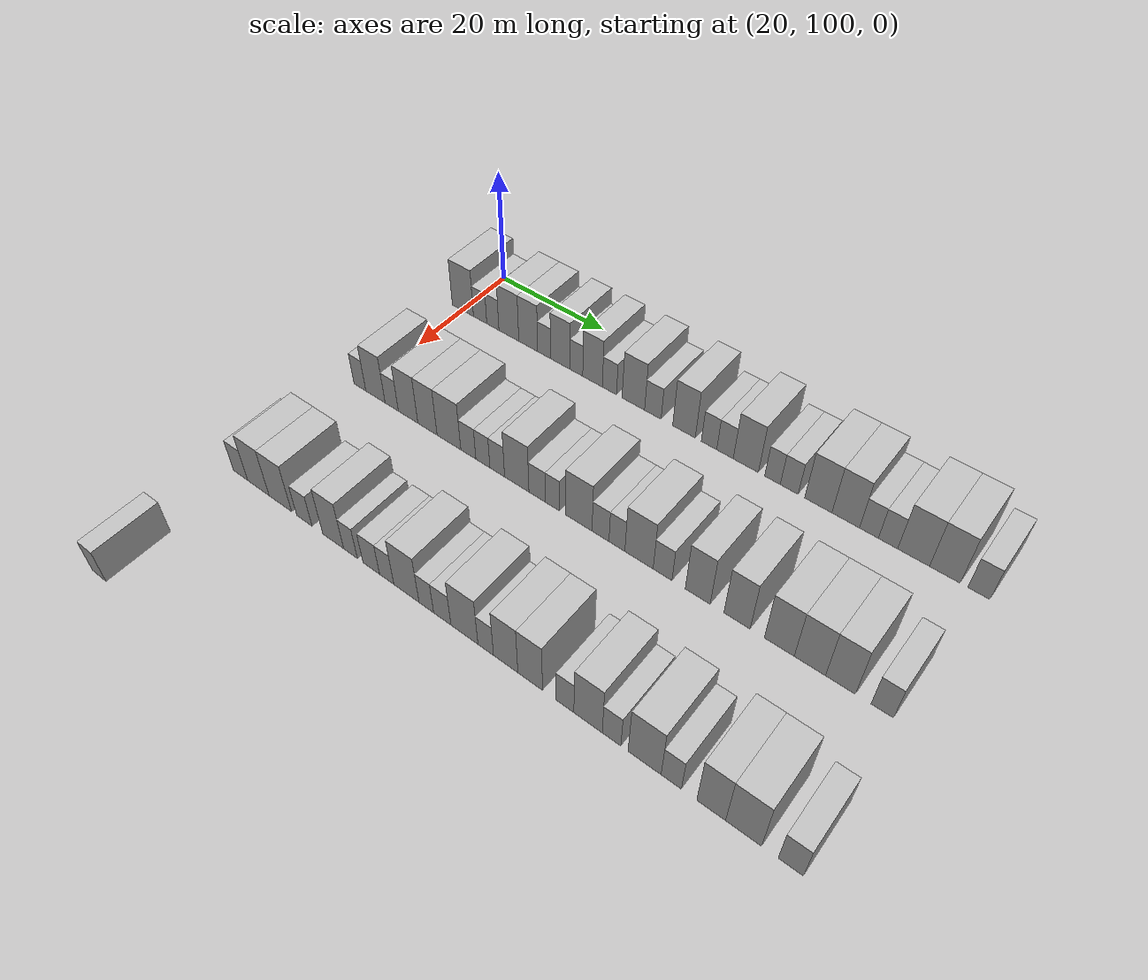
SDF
<sdf version="1.6">
 <world name="default">
  <model name="building_124">
   <static>1</static>
   <pose>25.0000 100.0367 0 0.000000 0.000000 0.000000</pose>
   <link name="link">
    <pose>0 0 4.50 0 0 0</pose>
    <collision name="collision"><geometry><box><size>10.0000 4.4048 9.0000</size></box></geometry></collision>
    <visual name="visual">
     <cast_shadows>0</cast_shadows>
     <geometry><box><size>10.0000 4.4048 9.0000</size></box></geometry>
     <material>
      <script>
       <uri>model://HANNAS_wall/materials/scripts</uri>
       <uri>model://HANNAS_wall/materials/textures</uri>
       <name>vrc/HANNAS_wall</name>
      </script>
     </material>
    </visual>
   </link>
  </model>
  <model name="building_125">
   <static>1</static>
   <pose>25.0000 103.6063 0 0.000000 0.000000 0.000000</pose>
   <link name="link">
    <pose>0 0 3.00 0 0 0</pose>
    <collision name="collision"><geometry><box><size>10.0000 2.7344 6.0000</size></box></geometry></collision>
    <visual name="visual">
     <cast_shadows>0</cast_shadows>
     <geometry><box><size>10.0000 2.7344 6.0000</size></box></geometry>
     <material>
      <script>
       <uri>model://HANNAS_wall/materials/scripts</uri>
       <uri>model://HANNAS_wall/materials/textures</uri>
       <name>vrc/HANNAS_wall</name>
      </script>
     </material>
    </visual>
   </link>
  </model>
  <model name="building_126">
   <static>1</static>
   <pose>25.0000 106.2059 0 0.000000 0.000000 0.000000</pose>
   <link name="link">
    <pose>0 0 3.00 0 0 0</pose>
    <collision name="collision"><geometry><box><size>10.0000 2.4646 6.0000</size></box></geometry></collision>
    <visual name="visual">
     <cast_shadows>0</cast_shadows>
     <geometry><box><size>10.0000 2.4646 6.0000</size></box></geometry>
     <material>
      <script>
       <uri>model://HANNAS_wall/materials/scripts</uri>
       <uri>model://HANNAS_wall/materials/textures</uri>
       <name>vrc/HANNAS_wall</name>
      </script>
     </material>
    </visual>
   </link>
  </model>
  <model name="building_127">
   <static>1</static>
   <pose>25.0000 109.4207 0 0.000000 0.000000 0.000000</pose>
   <link name="link">
    <pose>0 0 4.50 0 0 0</pose>
    <collision name="collision"><geometry><box><size>10.0000 3.9651 9.0000</size></box></geometry></collision>
    <visual name="visual">
     <cast_shadows>0</cast_shadows>
     <geometry><box><size>10.0000 3.9651 9.0000</size></box></geometry>
     <material>
      <script>
       <uri>model://HANNAS_wall/materials/scripts</uri>
       <uri>model://HANNAS_wall/materials/textures</uri>
       <name>vrc/HANNAS_wall</name>
      </script>
     </material>
    </visual>
   </link>
  </model>
  <model name="building_128">
   <static>1</static>
   <pose>25.0000 113.2568 0 0.000000 0.000000 0.000000</pose>
   <link name="link">
    <pose>0 0 4.50 0 0 0</pose>
    <collision name="collision"><geometry><box><size>10.0000 3.7070 9.0000</size></box></geometry></collision>
    <visual name="visual">
     <cast_shadows>0</cast_shadows>
     <geometry><box><size>10.0000 3.7070 9.0000</size></box></geometry>
     <material>
      <script>
       <uri>model://HANNAS_wall/materials/scripts</uri>
       <uri>model://HANNAS_wall/materials/textures</uri>
       <name>vrc/HANNAS_wall</name>
      </script>
     </material>
    </visual>
   </link>
  </model>
  <model name="building_129">
   <static>1</static>
   <pose>25.0000 116.3476 0 0.000000 0.000000 0.000000</pose>
   <link name="link">
    <pose>0 0 3.00 0 0 0</pose>
    <collision name="collision"><geometry><box><size>10.0000 2.4745 6.0000</size></box></geometry></collision>
    <visual name="visual">
     <cast_shadows>0</cast_shadows>
     <geometry><box><size>10.0000 2.4745 6.0000</size></box></geometry>
     <material>
      <script>
       <uri>model://HANNAS_wall/materials/scripts</uri>
       <uri>model://HANNAS_wall/materials/textures</uri>
       <name>vrc/HANNAS_wall</name>
      </script>
     </material>
    </visual>
   </link>
  </model>
  <model name="building_130">
   <static>1</static>
   <pose>25.0000 119.4244 0 0.000000 0.000000 0.000000</pose>
   <link name="link">
    <pose>0 0 4.50 0 0 0</pose>
    <collision name="collision"><geometry><box><size>10.0000 3.6791 9.0000</size></box></geometry></collision>
    <visual name="visual">
     <cast_shadows>0</cast_shadows>
     <geometry><box><size>10.0000 3.6791 9.0000</size></box></geometry>
     <material>
      <script>
       <uri>model://HANNAS_wall/materials/scripts</uri>
       <uri>model://HANNAS_wall/materials/textures</uri>
       <name>vrc/HANNAS_wall</name>
      </script>
     </material>
    </visual>
   </link>
  </model>
  <model name="building_131">
   <static>1</static>
   <pose>25.0000 122.4677 0 0.000000 0.000000 0.000000</pose>
   <link name="link">
    <pose>0 0 3.00 0 0 0</pose>
    <collision name="collision"><geometry><box><size>10.0000 2.4076 6.0000</size></box></geometry></collision>
    <visual name="visual">
     <cast_shadows>0</cast_shadows>
     <geometry><box><size>10.0000 2.4076 6.0000</size></box></geometry>
     <material>
      <script>
       <uri>model://HANNAS_wall/materials/scripts</uri>
       <uri>model://HANNAS_wall/materials/textures</uri>
       <name>vrc/HANNAS_wall</name>
      </script>
     </material>
    </visual>
   </link>
  </model>
  <model name="building_132">
   <static>1</static>
   <pose>25.0000 125.4758 0 0.000000 0.000000 0.000000</pose>
   <link name="link">
    <pose>0 0 4.50 0 0 0</pose>
    <collision name="collision"><geometry><box><size>10.0000 3.6086 9.0000</size></box></geometry></collision>
    <visual name="visual">
     <cast_shadows>0</cast_shadows>
     <geometry><box><size>10.0000 3.6086 9.0000</size></box></geometry>
     <material>
      <script>
       <uri>model://HANNAS_wall/materials/scripts</uri>
       <uri>model://HANNAS_wall/materials/textures</uri>
       <name>vrc/HANNAS_wall</name>
      </script>
     </material>
    </visual>
   </link>
  </model>
  <model name="building_133">
   <static>1</static>
   <pose>25.0000 128.5664 0 0.000000 0.000000 0.000000</pose>
   <link name="link">
    <pose>0 0 3.00 0 0 0</pose>
    <collision name="collision"><geometry><box><size>10.0000 2.5726 6.0000</size></box></geometry></collision>
    <visual name="visual">
     <cast_shadows>0</cast_shadows>
     <geometry><box><size>10.0000 2.5726 6.0000</size></box></geometry>
     <material>
      <script>
       <uri>model://HANNAS_wall/materials/scripts</uri>
       <uri>model://HANNAS_wall/materials/textures</uri>
       <name>vrc/HANNAS_wall</name>
      </script>
     </material>
    </visual>
   </link>
  </model>
  <model name="building_134">
   <static>1</static>
   <pose>25.0000 132.8520 0 0.000000 0.000000 0.000000</pose>
   <link name="link">
    <pose>0 0 4.50 0 0 0</pose>
    <collision name="collision"><geometry><box><size>10.0000 3.9986 9.0000</size></box></geometry></collision>
    <visual name="visual">
     <cast_shadows>0</cast_shadows>
     <geometry><box><size>10.0000 3.9986 9.0000</size></box></geometry>
     <material>
      <script>
       <uri>model://HANNAS_wall/materials/scripts</uri>
       <uri>model://HANNAS_wall/materials/textures</uri>
       <name>vrc/HANNAS_wall</name>
      </script>
     </material>
    </visual>
   </link>
  </model>
  <model name="building_135">
   <static>1</static>
   <pose>25.0000 136.2824 0 0.000000 0.000000 0.000000</pose>
   <link name="link">
    <pose>0 0 3.00 0 0 0</pose>
    <collision name="collision"><geometry><box><size>10.0000 2.8621 6.0000</size></box></geometry></collision>
    <visual name="visual">
     <cast_shadows>0</cast_shadows>
     <geometry><box><size>10.0000 2.8621 6.0000</size></box></geometry>
     <material>
      <script>
       <uri>model://HANNAS_wall/materials/scripts</uri>
       <uri>model://HANNAS_wall/materials/textures</uri>
       <name>vrc/HANNAS_wall</name>
      </script>
     </material>
    </visual>
   </link>
  </model>
  <model name="building_136">
   <static>1</static>
   <pose>25.0000 141.6259 0 0.000000 0.000000 0.000000</pose>
   <link name="link">
    <pose>0 0 4.50 0 0 0</pose>
    <collision name="collision"><geometry><box><size>10.0000 3.8249 9.0000</size></box></geometry></collision>
    <visual name="visual">
     <cast_shadows>0</cast_shadows>
     <geometry><box><size>10.0000 3.8249 9.0000</size></box></geometry>
     <material>
      <script>
       <uri>model://HANNAS_wall/materials/scripts</uri>
       <uri>model://HANNAS_wall/materials/textures</uri>
       <name>vrc/HANNAS_wall</name>
      </script>
     </material>
    </visual>
   </link>
  </model>
  <model name="building_137">
   <static>1</static>
   <pose>25.0000 145.8185 0 0.000000 0.000000 0.000000</pose>
   <link name="link">
    <pose>0 0 3.00 0 0 0</pose>
    <collision name="collision"><geometry><box><size>10.0000 2.5603 6.0000</size></box></geometry></collision>
    <visual name="visual">
     <cast_shadows>0</cast_shadows>
     <geometry><box><size>10.0000 2.5603 6.0000</size></box></geometry>
     <material>
      <script>
       <uri>model://HANNAS_wall/materials/scripts</uri>
       <uri>model://HANNAS_wall/materials/textures</uri>
       <name>vrc/HANNAS_wall</name>
      </script>
     </material>
    </visual>
   </link>
  </model>
  <model name="building_138">
   <static>1</static>
   <pose>25.0000 148.4455 0 0.000000 0.000000 0.000000</pose>
   <link name="link">
    <pose>0 0 3.00 0 0 0</pose>
    <collision name="collision"><geometry><box><size>10.0000 2.6937 6.0000</size></box></geometry></collision>
    <visual name="visual">
     <cast_shadows>0</cast_shadows>
     <geometry><box><size>10.0000 2.6937 6.0000</size></box></geometry>
     <material>
      <script>
       <uri>model://HANNAS_wall/materials/scripts</uri>
       <uri>model://HANNAS_wall/materials/textures</uri>
       <name>vrc/HANNAS_wall</name>
      </script>
     </material>
    </visual>
   </link>
  </model>
  <model name="building_139">
   <static>1</static>
   <pose>25.0000 151.8034 0 0.000000 0.000000 0.000000</pose>
   <link name="link">
    <pose>0 0 4.50 0 0 0</pose>
    <collision name="collision"><geometry><box><size>10.0000 4.0221 9.0000</size></box></geometry></collision>
    <visual name="visual">
     <cast_shadows>0</cast_shadows>
     <geometry><box><size>10.0000 4.0221 9.0000</size></box></geometry>
     <material>
      <script>
       <uri>model://HANNAS_wall/materials/scripts</uri>
       <uri>model://HANNAS_wall/materials/textures</uri>
       <name>vrc/HANNAS_wall</name>
      </script>
     </material>
    </visual>
   </link>
  </model>
  <model name="building_140">
   <static>1</static>
   <pose>25.0000 156.0294 0 0.000000 0.000000 0.000000</pose>
   <link name="link">
    <pose>0 0 3.00 0 0 0</pose>
    <collision name="collision"><geometry><box><size>10.0000 2.4299 6.0000</size></box></geometry></collision>
    <visual name="visual">
     <cast_shadows>0</cast_shadows>
     <geometry><box><size>10.0000 2.4299 6.0000</size></box></geometry>
     <material>
      <script>
       <uri>model://HANNAS_wall/materials/scripts</uri>
       <uri>model://HANNAS_wall/materials/textures</uri>
       <name>vrc/HANNAS_wall</name>
      </script>
     </material>
    </visual>
   </link>
  </model>
  <model name="building_141">
   <static>1</static>
   <pose>25.0000 158.6218 0 0.000000 0.000000 0.000000</pose>
   <link name="link">
    <pose>0 0 3.00 0 0 0</pose>
    <collision name="collision"><geometry><box><size>10.0000 2.7549 6.0000</size></box></geometry></collision>
    <visual name="visual">
     <cast_shadows>0</cast_shadows>
     <geometry><box><size>10.0000 2.7549 6.0000</size></box></geometry>
     <material>
      <script>
       <uri>model://HANNAS_wall/materials/scripts</uri>
       <uri>model://HANNAS_wall/materials/textures</uri>
       <name>vrc/HANNAS_wall</name>
      </script>
     </material>
    </visual>
   </link>
  </model>
  <model name="building_142">
   <static>1</static>
   <pose>25.0000 163.0457 0 0.000000 0.000000 0.000000</pose>
   <link name="link">
    <pose>0 0 4.50 0 0 0</pose>
    <collision name="collision"><geometry><box><size>10.0000 4.0930 9.0000</size></box></geometry></collision>
    <visual name="visual">
     <cast_shadows>0</cast_shadows>
     <geometry><box><size>10.0000 4.0930 9.0000</size></box></geometry>
     <material>
      <script>
       <uri>model://HANNAS_wall/materials/scripts</uri>
       <uri>model://HANNAS_wall/materials/textures</uri>
       <name>vrc/HANNAS_wall</name>
      </script>
     </material>
    </visual>
   </link>
  </model>
  <model name="building_143">
   <static>1</static>
   <pose>25.0000 167.1226 0 0.000000 0.000000 0.000000</pose>
   <link name="link">
    <pose>0 0 4.50 0 0 0</pose>
    <collision name="collision"><geometry><box><size>10.0000 4.0608 9.0000</size></box></geometry></collision>
    <visual name="visual">
     <cast_shadows>0</cast_shadows>
     <geometry><box><size>10.0000 4.0608 9.0000</size></box></geometry>
     <material>
      <script>
       <uri>model://HANNAS_wall/materials/scripts</uri>
       <uri>model://HANNAS_wall/materials/textures</uri>
       <name>vrc/HANNAS_wall</name>
      </script>
     </material>
    </visual>
   </link>
  </model>
  <model name="building_144">
   <static>1</static>
   <pose>25.0000 170.5080 0 0.000000 0.000000 0.000000</pose>
   <link name="link">
    <pose>0 0 3.00 0 0 0</pose>
    <collision name="collision"><geometry><box><size>10.0000 2.7100 6.0000</size></box></geometry></collision>
    <visual name="visual">
     <cast_shadows>0</cast_shadows>
     <geometry><box><size>10.0000 2.7100 6.0000</size></box></geometry>
     <material>
      <script>
       <uri>model://HANNAS_wall/materials/scripts</uri>
       <uri>model://HANNAS_wall/materials/textures</uri>
       <name>vrc/HANNAS_wall</name>
      </script>
     </material>
    </visual>
   </link>
  </model>
  <model name="building_145">
   <static>1</static>
   <pose>25.0000 173.2279 0 0.000000 0.000000 0.000000</pose>
   <link name="link">
    <pose>0 0 3.00 0 0 0</pose>
    <collision name="collision"><geometry><box><size>10.0000 2.7298 6.0000</size></box></geometry></collision>
    <visual name="visual">
     <cast_shadows>0</cast_shadows>
     <geometry><box><size>10.0000 2.7298 6.0000</size></box></geometry>
     <material>
      <script>
       <uri>model://HANNAS_wall/materials/scripts</uri>
       <uri>model://HANNAS_wall/materials/textures</uri>
       <name>vrc/HANNAS_wall</name>
      </script>
     </material>
    </visual>
   </link>
  </model>
  <model name="building_146">
   <static>1</static>
   <pose>25.0000 176.8034 0 0.000000 0.000000 0.000000</pose>
   <link name="link">
    <pose>0 0 4.50 0 0 0</pose>
    <collision name="collision"><geometry><box><size>10.0000 4.4211 9.0000</size></box></geometry></collision>
    <visual name="visual">
     <cast_shadows>0</cast_shadows>
     <geometry><box><size>10.0000 4.4211 9.0000</size></box></geometry>
     <material>
      <script>
       <uri>model://HANNAS_wall/materials/scripts</uri>
       <uri>model://HANNAS_wall/materials/textures</uri>
       <name>vrc/HANNAS_wall</name>
      </script>
     </material>
    </visual>
   </link>
  </model>
  <model name="building_147">
   <static>1</static>
   <pose>25.0000 181.0889 0 0.000000 0.000000 0.000000</pose>
   <link name="link">
    <pose>0 0 4.50 0 0 0</pose>
    <collision name="collision"><geometry><box><size>10.0000 4.1500 9.0000</size></box></geometry></collision>
    <visual name="visual">
     <cast_shadows>0</cast_shadows>
     <geometry><box><size>10.0000 4.1500 9.0000</size></box></geometry>
     <material>
      <script>
       <uri>model://HANNAS_wall/materials/scripts</uri>
       <uri>model://HANNAS_wall/materials/textures</uri>
       <name>vrc/HANNAS_wall</name>
      </script>
     </material>
    </visual>
   </link>
  </model>
  <model name="building_148">
   <static>1</static>
   <pose>25.0000 185.6309 0 0.000000 0.000000 0.000000</pose>
   <link name="link">
    <pose>0 0 3.00 0 0 0</pose>
    <collision name="collision"><geometry><box><size>10.0000 2.9339 6.0000</size></box></geometry></collision>
    <visual name="visual">
     <cast_shadows>0</cast_shadows>
     <geometry><box><size>10.0000 2.9339 6.0000</size></box></geometry>
     <material>
      <script>
       <uri>model://HANNAS_wall/materials/scripts</uri>
       <uri>model://HANNAS_wall/materials/textures</uri>
       <name>vrc/HANNAS_wall</name>
      </script>
     </material>
    </visual>
   </link>
  </model>
  <model name="building_316">
   <static>1</static>
   <pose>47.0000 99.5500 0 0.000000 0.000000 0.000000</pose>
   <link name="link">
    <pose>0 0 3.00 0 0 0</pose>
    <collision name="collision"><geometry><box><size>10.0000 2.4302 6.0000</size></box></geometry></collision>
    <visual name="visual">
     <cast_shadows>0</cast_shadows>
     <geometry><box><size>10.0000 2.4302 6.0000</size></box></geometry>
     <material>
      <script>
       <uri>model://HANNAS_wall/materials/scripts</uri>
       <uri>model://HANNAS_wall/materials/textures</uri>
       <name>vrc/HANNAS_wall</name>
      </script>
     </material>
    </visual>
   </link>
  </model>
  <model name="building_317">
   <static>1</static>
   <pose>47.0000 102.7217 0 0.000000 0.000000 0.000000</pose>
   <link name="link">
    <pose>0 0 4.50 0 0 0</pose>
    <collision name="collision"><geometry><box><size>10.0000 3.9132 9.0000</size></box></geometry></collision>
    <visual name="visual">
     <cast_shadows>0</cast_shadows>
     <geometry><box><size>10.0000 3.9132 9.0000</size></box></geometry>
     <material>
      <script>
       <uri>model://HANNAS_wall/materials/scripts</uri>
       <uri>model://HANNAS_wall/materials/textures</uri>
       <name>vrc/HANNAS_wall</name>
      </script>
     </material>
    </visual>
   </link>
  </model>
  <model name="building_318">
   <static>1</static>
   <pose>47.0000 105.9974 0 0.000000 0.000000 0.000000</pose>
   <link name="link">
    <pose>0 0 3.00 0 0 0</pose>
    <collision name="collision"><geometry><box><size>10.0000 2.6382 6.0000</size></box></geometry></collision>
    <visual name="visual">
     <cast_shadows>0</cast_shadows>
     <geometry><box><size>10.0000 2.6382 6.0000</size></box></geometry>
     <material>
      <script>
       <uri>model://HANNAS_wall/materials/scripts</uri>
       <uri>model://HANNAS_wall/materials/textures</uri>
       <name>vrc/HANNAS_wall</name>
      </script>
     </material>
    </visual>
   </link>
  </model>
  <model name="building_319">
   <static>1</static>
   <pose>47.0000 109.2314 0 0.000000 0.000000 0.000000</pose>
   <link name="link">
    <pose>0 0 4.50 0 0 0</pose>
    <collision name="collision"><geometry><box><size>10.0000 3.8297 9.0000</size></box></geometry></collision>
    <visual name="visual">
     <cast_shadows>0</cast_shadows>
     <geometry><box><size>10.0000 3.8297 9.0000</size></box></geometry>
     <material>
      <script>
       <uri>model://HANNAS_wall/materials/scripts</uri>
       <uri>model://HANNAS_wall/materials/textures</uri>
       <name>vrc/HANNAS_wall</name>
      </script>
     </material>
    </visual>
   </link>
  </model>
  <model name="building_320">
   <static>1</static>
   <pose>47.0000 112.9903 0 0.000000 0.000000 0.000000</pose>
   <link name="link">
    <pose>0 0 4.50 0 0 0</pose>
    <collision name="collision"><geometry><box><size>10.0000 3.6881 9.0000</size></box></geometry></collision>
    <visual name="visual">
     <cast_shadows>0</cast_shadows>
     <geometry><box><size>10.0000 3.6881 9.0000</size></box></geometry>
     <material>
      <script>
       <uri>model://HANNAS_wall/materials/scripts</uri>
       <uri>model://HANNAS_wall/materials/textures</uri>
       <name>vrc/HANNAS_wall</name>
      </script>
     </material>
    </visual>
   </link>
  </model>
  <model name="building_321">
   <static>1</static>
   <pose>47.0000 117.0647 0 0.000000 0.000000 0.000000</pose>
   <link name="link">
    <pose>0 0 4.50 0 0 0</pose>
    <collision name="collision"><geometry><box><size>10.0000 4.4606 9.0000</size></box></geometry></collision>
    <visual name="visual">
     <cast_shadows>0</cast_shadows>
     <geometry><box><size>10.0000 4.4606 9.0000</size></box></geometry>
     <material>
      <script>
       <uri>model://HANNAS_wall/materials/scripts</uri>
       <uri>model://HANNAS_wall/materials/textures</uri>
       <name>vrc/HANNAS_wall</name>
      </script>
     </material>
    </visual>
   </link>
  </model>
  <model name="building_322">
   <static>1</static>
   <pose>47.0000 120.6767 0 0.000000 0.000000 0.000000</pose>
   <link name="link">
    <pose>0 0 3.00 0 0 0</pose>
    <collision name="collision"><geometry><box><size>10.0000 2.7635 6.0000</size></box></geometry></collision>
    <visual name="visual">
     <cast_shadows>0</cast_shadows>
     <geometry><box><size>10.0000 2.7635 6.0000</size></box></geometry>
     <material>
      <script>
       <uri>model://HANNAS_wall/materials/scripts</uri>
       <uri>model://HANNAS_wall/materials/textures</uri>
       <name>vrc/HANNAS_wall</name>
      </script>
     </material>
    </visual>
   </link>
  </model>
  <model name="building_323">
   <static>1</static>
   <pose>47.0000 123.3315 0 0.000000 0.000000 0.000000</pose>
   <link name="link">
    <pose>0 0 3.00 0 0 0</pose>
    <collision name="collision"><geometry><box><size>10.0000 2.5463 6.0000</size></box></geometry></collision>
    <visual name="visual">
     <cast_shadows>0</cast_shadows>
     <geometry><box><size>10.0000 2.5463 6.0000</size></box></geometry>
     <material>
      <script>
       <uri>model://HANNAS_wall/materials/scripts</uri>
       <uri>model://HANNAS_wall/materials/textures</uri>
       <name>vrc/HANNAS_wall</name>
      </script>
     </material>
    </visual>
   </link>
  </model>
  <model name="building_324">
   <static>1</static>
   <pose>47.0000 125.9152 0 0.000000 0.000000 0.000000</pose>
   <link name="link">
    <pose>0 0 3.00 0 0 0</pose>
    <collision name="collision"><geometry><box><size>10.0000 2.6211 6.0000</size></box></geometry></collision>
    <visual name="visual">
     <cast_shadows>0</cast_shadows>
     <geometry><box><size>10.0000 2.6211 6.0000</size></box></geometry>
     <material>
      <script>
       <uri>model://HANNAS_wall/materials/scripts</uri>
       <uri>model://HANNAS_wall/materials/textures</uri>
       <name>vrc/HANNAS_wall</name>
      </script>
     </material>
    </visual>
   </link>
  </model>
  <model name="building_325">
   <static>1</static>
   <pose>47.0000 129.3603 0 0.000000 0.000000 0.000000</pose>
   <link name="link">
    <pose>0 0 4.50 0 0 0</pose>
    <collision name="collision"><geometry><box><size>10.0000 4.2690 9.0000</size></box></geometry></collision>
    <visual name="visual">
     <cast_shadows>0</cast_shadows>
     <geometry><box><size>10.0000 4.2690 9.0000</size></box></geometry>
     <material>
      <script>
       <uri>model://HANNAS_wall/materials/scripts</uri>
       <uri>model://HANNAS_wall/materials/textures</uri>
       <name>vrc/HANNAS_wall</name>
      </script>
     </material>
    </visual>
   </link>
  </model>
  <model name="building_326">
   <static>1</static>
   <pose>47.0000 132.9080 0 0.000000 0.000000 0.000000</pose>
   <link name="link">
    <pose>0 0 3.00 0 0 0</pose>
    <collision name="collision"><geometry><box><size>10.0000 2.8264 6.0000</size></box></geometry></collision>
    <visual name="visual">
     <cast_shadows>0</cast_shadows>
     <geometry><box><size>10.0000 2.8264 6.0000</size></box></geometry>
     <material>
      <script>
       <uri>model://HANNAS_wall/materials/scripts</uri>
       <uri>model://HANNAS_wall/materials/textures</uri>
       <name>vrc/HANNAS_wall</name>
      </script>
     </material>
    </visual>
   </link>
  </model>
  <model name="building_327">
   <static>1</static>
   <pose>47.0000 135.5254 0 0.000000 0.000000 0.000000</pose>
   <link name="link">
    <pose>0 0 3.00 0 0 0</pose>
    <collision name="collision"><geometry><box><size>10.0000 2.4085 6.0000</size></box></geometry></collision>
    <visual name="visual">
     <cast_shadows>0</cast_shadows>
     <geometry><box><size>10.0000 2.4085 6.0000</size></box></geometry>
     <material>
      <script>
       <uri>model://HANNAS_wall/materials/scripts</uri>
       <uri>model://HANNAS_wall/materials/textures</uri>
       <name>vrc/HANNAS_wall</name>
      </script>
     </material>
    </visual>
   </link>
  </model>
  <model name="building_328">
   <static>1</static>
   <pose>47.0000 139.9162 0 0.000000 0.000000 0.000000</pose>
   <link name="link">
    <pose>0 0 4.50 0 0 0</pose>
    <collision name="collision"><geometry><box><size>10.0000 4.3731 9.0000</size></box></geometry></collision>
    <visual name="visual">
     <cast_shadows>0</cast_shadows>
     <geometry><box><size>10.0000 4.3731 9.0000</size></box></geometry>
     <material>
      <script>
       <uri>model://HANNAS_wall/materials/scripts</uri>
       <uri>model://HANNAS_wall/materials/textures</uri>
       <name>vrc/HANNAS_wall</name>
      </script>
     </material>
    </visual>
   </link>
  </model>
  <model name="building_329">
   <static>1</static>
   <pose>47.0000 143.4748 0 0.000000 0.000000 0.000000</pose>
   <link name="link">
    <pose>0 0 3.00 0 0 0</pose>
    <collision name="collision"><geometry><box><size>10.0000 2.7442 6.0000</size></box></geometry></collision>
    <visual name="visual">
     <cast_shadows>0</cast_shadows>
     <geometry><box><size>10.0000 2.7442 6.0000</size></box></geometry>
     <material>
      <script>
       <uri>model://HANNAS_wall/materials/scripts</uri>
       <uri>model://HANNAS_wall/materials/textures</uri>
       <name>vrc/HANNAS_wall</name>
      </script>
     </material>
    </visual>
   </link>
  </model>
  <model name="building_330">
   <static>1</static>
   <pose>47.0000 146.1099 0 0.000000 0.000000 0.000000</pose>
   <link name="link">
    <pose>0 0 3.00 0 0 0</pose>
    <collision name="collision"><geometry><box><size>10.0000 2.5260 6.0000</size></box></geometry></collision>
    <visual name="visual">
     <cast_shadows>0</cast_shadows>
     <geometry><box><size>10.0000 2.5260 6.0000</size></box></geometry>
     <material>
      <script>
       <uri>model://HANNAS_wall/materials/scripts</uri>
       <uri>model://HANNAS_wall/materials/textures</uri>
       <name>vrc/HANNAS_wall</name>
      </script>
     </material>
    </visual>
   </link>
  </model>
  <model name="building_331">
   <static>1</static>
   <pose>47.0000 149.5868 0 0.000000 0.000000 0.000000</pose>
   <link name="link">
    <pose>0 0 4.50 0 0 0</pose>
    <collision name="collision"><geometry><box><size>10.0000 4.4278 9.0000</size></box></geometry></collision>
    <visual name="visual">
     <cast_shadows>0</cast_shadows>
     <geometry><box><size>10.0000 4.4278 9.0000</size></box></geometry>
     <material>
      <script>
       <uri>model://HANNAS_wall/materials/scripts</uri>
       <uri>model://HANNAS_wall/materials/textures</uri>
       <name>vrc/HANNAS_wall</name>
      </script>
     </material>
    </visual>
   </link>
  </model>
  <model name="building_332">
   <static>1</static>
   <pose>47.0000 153.2362 0 0.000000 0.000000 0.000000</pose>
   <link name="link">
    <pose>0 0 3.00 0 0 0</pose>
    <collision name="collision"><geometry><box><size>10.0000 2.8711 6.0000</size></box></geometry></collision>
    <visual name="visual">
     <cast_shadows>0</cast_shadows>
     <geometry><box><size>10.0000 2.8711 6.0000</size></box></geometry>
     <material>
      <script>
       <uri>model://HANNAS_wall/materials/scripts</uri>
       <uri>model://HANNAS_wall/materials/textures</uri>
       <name>vrc/HANNAS_wall</name>
      </script>
     </material>
    </visual>
   </link>
  </model>
  <model name="building_333">
   <static>1</static>
   <pose>47.0000 158.5173 0 0.000000 0.000000 0.000000</pose>
   <link name="link">
    <pose>0 0 4.50 0 0 0</pose>
    <collision name="collision"><geometry><box><size>10.0000 3.6910 9.0000</size></box></geometry></collision>
    <visual name="visual">
     <cast_shadows>0</cast_shadows>
     <geometry><box><size>10.0000 3.6910 9.0000</size></box></geometry>
     <material>
      <script>
       <uri>model://HANNAS_wall/materials/scripts</uri>
       <uri>model://HANNAS_wall/materials/textures</uri>
       <name>vrc/HANNAS_wall</name>
      </script>
     </material>
    </visual>
   </link>
  </model>
  <model name="building_334">
   <static>1</static>
   <pose>47.0000 164.2312 0 0.000000 0.000000 0.000000</pose>
   <link name="link">
    <pose>0 0 4.50 0 0 0</pose>
    <collision name="collision"><geometry><box><size>10.0000 3.7367 9.0000</size></box></geometry></collision>
    <visual name="visual">
     <cast_shadows>0</cast_shadows>
     <geometry><box><size>10.0000 3.7367 9.0000</size></box></geometry>
     <material>
      <script>
       <uri>model://HANNAS_wall/materials/scripts</uri>
       <uri>model://HANNAS_wall/materials/textures</uri>
       <name>vrc/HANNAS_wall</name>
      </script>
     </material>
    </visual>
   </link>
  </model>
  <model name="building_335">
   <static>1</static>
   <pose>47.0000 170.1548 0 0.000000 0.000000 0.000000</pose>
   <link name="link">
    <pose>0 0 4.50 0 0 0</pose>
    <collision name="collision"><geometry><box><size>10.0000 4.1105 9.0000</size></box></geometry></collision>
    <visual name="visual">
     <cast_shadows>0</cast_shadows>
     <geometry><box><size>10.0000 4.1105 9.0000</size></box></geometry>
     <material>
      <script>
       <uri>model://HANNAS_wall/materials/scripts</uri>
       <uri>model://HANNAS_wall/materials/textures</uri>
       <name>vrc/HANNAS_wall</name>
      </script>
     </material>
    </visual>
   </link>
  </model>
  <model name="building_336">
   <static>1</static>
   <pose>47.0000 174.3052 0 0.000000 0.000000 0.000000</pose>
   <link name="link">
    <pose>0 0 4.50 0 0 0</pose>
    <collision name="collision"><geometry><box><size>10.0000 4.1903 9.0000</size></box></geometry></collision>
    <visual name="visual">
     <cast_shadows>0</cast_shadows>
     <geometry><box><size>10.0000 4.1903 9.0000</size></box></geometry>
     <material>
      <script>
       <uri>model://HANNAS_wall/materials/scripts</uri>
       <uri>model://HANNAS_wall/materials/textures</uri>
       <name>vrc/HANNAS_wall</name>
      </script>
     </material>
    </visual>
   </link>
  </model>
  <model name="building_337">
   <static>1</static>
   <pose>47.0000 178.3533 0 0.000000 0.000000 0.000000</pose>
   <link name="link">
    <pose>0 0 4.50 0 0 0</pose>
    <collision name="collision"><geometry><box><size>10.0000 3.9059 9.0000</size></box></geometry></collision>
    <visual name="visual">
     <cast_shadows>0</cast_shadows>
     <geometry><box><size>10.0000 3.9059 9.0000</size></box></geometry>
     <material>
      <script>
       <uri>model://HANNAS_wall/materials/scripts</uri>
       <uri>model://HANNAS_wall/materials/textures</uri>
       <name>vrc/HANNAS_wall</name>
      </script>
     </material>
    </visual>
   </link>
  </model>
  <model name="building_338">
   <static>1</static>
   <pose>47.0000 183.7246 0 0.000000 0.000000 0.000000</pose>
   <link name="link">
    <pose>0 0 3.00 0 0 0</pose>
    <collision name="collision"><geometry><box><size>10.0000 2.8368 6.0000</size></box></geometry></collision>
    <visual name="visual">
     <cast_shadows>0</cast_shadows>
     <geometry><box><size>10.0000 2.8368 6.0000</size></box></geometry>
     <material>
      <script>
       <uri>model://HANNAS_wall/materials/scripts</uri>
       <uri>model://HANNAS_wall/materials/textures</uri>
       <name>vrc/HANNAS_wall</name>
      </script>
     </material>
    </visual>
   </link>
  </model>
  <model name="building_507">
   <static>1</static>
   <pose>69.0000 98.9515 0 0.000000 0.000000 0.000000</pose>
   <link name="link">
    <pose>0 0 3.00 0 0 0</pose>
    <collision name="collision"><geometry><box><size>10.0000 2.9299 6.0000</size></box></geometry></collision>
    <visual name="visual">
     <cast_shadows>0</cast_shadows>
     <geometry><box><size>10.0000 2.9299 6.0000</size></box></geometry>
     <material>
      <script>
       <uri>model://HANNAS_wall/materials/scripts</uri>
       <uri>model://HANNAS_wall/materials/textures</uri>
       <name>vrc/HANNAS_wall</name>
      </script>
     </material>
    </visual>
   </link>
  </model>
  <model name="building_508">
   <static>1</static>
   <pose>69.0000 102.5500 0 0.000000 0.000000 0.000000</pose>
   <link name="link">
    <pose>0 0 4.50 0 0 0</pose>
    <collision name="collision"><geometry><box><size>10.0000 4.2671 9.0000</size></box></geometry></collision>
    <visual name="visual">
     <cast_shadows>0</cast_shadows>
     <geometry><box><size>10.0000 4.2671 9.0000</size></box></geometry>
     <material>
      <script>
       <uri>model://HANNAS_wall/materials/scripts</uri>
       <uri>model://HANNAS_wall/materials/textures</uri>
       <name>vrc/HANNAS_wall</name>
      </script>
     </material>
    </visual>
   </link>
  </model>
  <model name="building_509">
   <static>1</static>
   <pose>69.0000 106.8796 0 0.000000 0.000000 0.000000</pose>
   <link name="link">
    <pose>0 0 4.50 0 0 0</pose>
    <collision name="collision"><geometry><box><size>10.0000 4.3920 9.0000</size></box></geometry></collision>
    <visual name="visual">
     <cast_shadows>0</cast_shadows>
     <geometry><box><size>10.0000 4.3920 9.0000</size></box></geometry>
     <material>
      <script>
       <uri>model://HANNAS_wall/materials/scripts</uri>
       <uri>model://HANNAS_wall/materials/textures</uri>
       <name>vrc/HANNAS_wall</name>
      </script>
     </material>
    </visual>
   </link>
  </model>
  <model name="building_510">
   <static>1</static>
   <pose>69.0000 111.5343 0 0.000000 0.000000 0.000000</pose>
   <link name="link">
    <pose>0 0 3.00 0 0 0</pose>
    <collision name="collision"><geometry><box><size>10.0000 2.9173 6.0000</size></box></geometry></collision>
    <visual name="visual">
     <cast_shadows>0</cast_shadows>
     <geometry><box><size>10.0000 2.9173 6.0000</size></box></geometry>
     <material>
      <script>
       <uri>model://HANNAS_wall/materials/scripts</uri>
       <uri>model://HANNAS_wall/materials/textures</uri>
       <name>vrc/HANNAS_wall</name>
      </script>
     </material>
    </visual>
   </link>
  </model>
  <model name="building_511">
   <static>1</static>
   <pose>69.0000 116.9315 0 0.000000 0.000000 0.000000</pose>
   <link name="link">
    <pose>0 0 4.50 0 0 0</pose>
    <collision name="collision"><geometry><box><size>10.0000 3.8772 9.0000</size></box></geometry></collision>
    <visual name="visual">
     <cast_shadows>0</cast_shadows>
     <geometry><box><size>10.0000 3.8772 9.0000</size></box></geometry>
     <material>
      <script>
       <uri>model://HANNAS_wall/materials/scripts</uri>
       <uri>model://HANNAS_wall/materials/textures</uri>
       <name>vrc/HANNAS_wall</name>
      </script>
     </material>
    </visual>
   </link>
  </model>
  <model name="building_512">
   <static>1</static>
   <pose>69.0000 120.1072 0 0.000000 0.000000 0.000000</pose>
   <link name="link">
    <pose>0 0 3.00 0 0 0</pose>
    <collision name="collision"><geometry><box><size>10.0000 2.4742 6.0000</size></box></geometry></collision>
    <visual name="visual">
     <cast_shadows>0</cast_shadows>
     <geometry><box><size>10.0000 2.4742 6.0000</size></box></geometry>
     <material>
      <script>
       <uri>model://HANNAS_wall/materials/scripts</uri>
       <uri>model://HANNAS_wall/materials/textures</uri>
       <name>vrc/HANNAS_wall</name>
      </script>
     </material>
    </visual>
   </link>
  </model>
  <model name="building_513">
   <static>1</static>
   <pose>69.0000 123.8190 0 0.000000 0.000000 0.000000</pose>
   <link name="link">
    <pose>0 0 3.00 0 0 0</pose>
    <collision name="collision"><geometry><box><size>10.0000 2.9495 6.0000</size></box></geometry></collision>
    <visual name="visual">
     <cast_shadows>0</cast_shadows>
     <geometry><box><size>10.0000 2.9495 6.0000</size></box></geometry>
     <material>
      <script>
       <uri>model://HANNAS_wall/materials/scripts</uri>
       <uri>model://HANNAS_wall/materials/textures</uri>
       <name>vrc/HANNAS_wall</name>
      </script>
     </material>
    </visual>
   </link>
  </model>
  <model name="building_514">
   <static>1</static>
   <pose>69.0000 126.5325 0 0.000000 0.000000 0.000000</pose>
   <link name="link">
    <pose>0 0 3.00 0 0 0</pose>
    <collision name="collision"><geometry><box><size>10.0000 2.4776 6.0000</size></box></geometry></collision>
    <visual name="visual">
     <cast_shadows>0</cast_shadows>
     <geometry><box><size>10.0000 2.4776 6.0000</size></box></geometry>
     <material>
      <script>
       <uri>model://HANNAS_wall/materials/scripts</uri>
       <uri>model://HANNAS_wall/materials/textures</uri>
       <name>vrc/HANNAS_wall</name>
      </script>
     </material>
    </visual>
   </link>
  </model>
  <model name="building_515">
   <static>1</static>
   <pose>69.0000 129.9258 0 0.000000 0.000000 0.000000</pose>
   <link name="link">
    <pose>0 0 4.50 0 0 0</pose>
    <collision name="collision"><geometry><box><size>10.0000 4.3089 9.0000</size></box></geometry></collision>
    <visual name="visual">
     <cast_shadows>0</cast_shadows>
     <geometry><box><size>10.0000 4.3089 9.0000</size></box></geometry>
     <material>
      <script>
       <uri>model://HANNAS_wall/materials/scripts</uri>
       <uri>model://HANNAS_wall/materials/textures</uri>
       <name>vrc/HANNAS_wall</name>
      </script>
     </material>
    </visual>
   </link>
  </model>
  <model name="building_516">
   <static>1</static>
   <pose>69.0000 133.3000 0 0.000000 0.000000 0.000000</pose>
   <link name="link">
    <pose>0 0 3.00 0 0 0</pose>
    <collision name="collision"><geometry><box><size>10.0000 2.4395 6.0000</size></box></geometry></collision>
    <visual name="visual">
     <cast_shadows>0</cast_shadows>
     <geometry><box><size>10.0000 2.4395 6.0000</size></box></geometry>
     <material>
      <script>
       <uri>model://HANNAS_wall/materials/scripts</uri>
       <uri>model://HANNAS_wall/materials/textures</uri>
       <name>vrc/HANNAS_wall</name>
      </script>
     </material>
    </visual>
   </link>
  </model>
  <model name="building_517">
   <static>1</static>
   <pose>69.0000 135.9406 0 0.000000 0.000000 0.000000</pose>
   <link name="link">
    <pose>0 0 3.00 0 0 0</pose>
    <collision name="collision"><geometry><box><size>10.0000 2.8418 6.0000</size></box></geometry></collision>
    <visual name="visual">
     <cast_shadows>0</cast_shadows>
     <geometry><box><size>10.0000 2.8418 6.0000</size></box></geometry>
     <material>
      <script>
       <uri>model://HANNAS_wall/materials/scripts</uri>
       <uri>model://HANNAS_wall/materials/textures</uri>
       <name>vrc/HANNAS_wall</name>
      </script>
     </material>
    </visual>
   </link>
  </model>
  <model name="building_518">
   <static>1</static>
   <pose>69.0000 139.5350 0 0.000000 0.000000 0.000000</pose>
   <link name="link">
    <pose>0 0 4.50 0 0 0</pose>
    <collision name="collision"><geometry><box><size>10.0000 4.3471 9.0000</size></box></geometry></collision>
    <visual name="visual">
     <cast_shadows>0</cast_shadows>
     <geometry><box><size>10.0000 4.3471 9.0000</size></box></geometry>
     <material>
      <script>
       <uri>model://HANNAS_wall/materials/scripts</uri>
       <uri>model://HANNAS_wall/materials/textures</uri>
       <name>vrc/HANNAS_wall</name>
      </script>
     </material>
    </visual>
   </link>
  </model>
  <model name="building_519">
   <static>1</static>
   <pose>69.0000 142.9309 0 0.000000 0.000000 0.000000</pose>
   <link name="link">
    <pose>0 0 3.00 0 0 0</pose>
    <collision name="collision"><geometry><box><size>10.0000 2.4448 6.0000</size></box></geometry></collision>
    <visual name="visual">
     <cast_shadows>0</cast_shadows>
     <geometry><box><size>10.0000 2.4448 6.0000</size></box></geometry>
     <material>
      <script>
       <uri>model://HANNAS_wall/materials/scripts</uri>
       <uri>model://HANNAS_wall/materials/textures</uri>
       <name>vrc/HANNAS_wall</name>
      </script>
     </material>
    </visual>
   </link>
  </model>
  <model name="building_520">
   <static>1</static>
   <pose>69.0000 146.0306 0 0.000000 0.000000 0.000000</pose>
   <link name="link">
    <pose>0 0 4.50 0 0 0</pose>
    <collision name="collision"><geometry><box><size>10.0000 3.7545 9.0000</size></box></geometry></collision>
    <visual name="visual">
     <cast_shadows>0</cast_shadows>
     <geometry><box><size>10.0000 3.7545 9.0000</size></box></geometry>
     <material>
      <script>
       <uri>model://HANNAS_wall/materials/scripts</uri>
       <uri>model://HANNAS_wall/materials/textures</uri>
       <name>vrc/HANNAS_wall</name>
      </script>
     </material>
    </visual>
   </link>
  </model>
  <model name="building_521">
   <static>1</static>
   <pose>69.0000 149.7682 0 0.000000 0.000000 0.000000</pose>
   <link name="link">
    <pose>0 0 4.50 0 0 0</pose>
    <collision name="collision"><geometry><box><size>10.0000 3.7207 9.0000</size></box></geometry></collision>
    <visual name="visual">
     <cast_shadows>0</cast_shadows>
     <geometry><box><size>10.0000 3.7207 9.0000</size></box></geometry>
     <material>
      <script>
       <uri>model://HANNAS_wall/materials/scripts</uri>
       <uri>model://HANNAS_wall/materials/textures</uri>
       <name>vrc/HANNAS_wall</name>
      </script>
     </material>
    </visual>
   </link>
  </model>
  <model name="building_522">
   <static>1</static>
   <pose>69.0000 154.9205 0 0.000000 0.000000 0.000000</pose>
   <link name="link">
    <pose>0 0 3.00 0 0 0</pose>
    <collision name="collision"><geometry><box><size>10.0000 2.5839 6.0000</size></box></geometry></collision>
    <visual name="visual">
     <cast_shadows>0</cast_shadows>
     <geometry><box><size>10.0000 2.5839 6.0000</size></box></geometry>
     <material>
      <script>
       <uri>model://HANNAS_wall/materials/scripts</uri>
       <uri>model://HANNAS_wall/materials/textures</uri>
       <name>vrc/HANNAS_wall</name>
      </script>
     </material>
    </visual>
   </link>
  </model>
  <model name="building_523">
   <static>1</static>
   <pose>69.0000 158.2390 0 0.000000 0.000000 0.000000</pose>
   <link name="link">
    <pose>0 0 4.50 0 0 0</pose>
    <collision name="collision"><geometry><box><size>10.0000 4.0532 9.0000</size></box></geometry></collision>
    <visual name="visual">
     <cast_shadows>0</cast_shadows>
     <geometry><box><size>10.0000 4.0532 9.0000</size></box></geometry>
     <material>
      <script>
       <uri>model://HANNAS_wall/materials/scripts</uri>
       <uri>model://HANNAS_wall/materials/textures</uri>
       <name>vrc/HANNAS_wall</name>
      </script>
     </material>
    </visual>
   </link>
  </model>
  <model name="building_524">
   <static>1</static>
   <pose>69.0000 161.5576 0 0.000000 0.000000 0.000000</pose>
   <link name="link">
    <pose>0 0 3.00 0 0 0</pose>
    <collision name="collision"><geometry><box><size>10.0000 2.5841 6.0000</size></box></geometry></collision>
    <visual name="visual">
     <cast_shadows>0</cast_shadows>
     <geometry><box><size>10.0000 2.5841 6.0000</size></box></geometry>
     <material>
      <script>
       <uri>model://HANNAS_wall/materials/scripts</uri>
       <uri>model://HANNAS_wall/materials/textures</uri>
       <name>vrc/HANNAS_wall</name>
      </script>
     </material>
    </visual>
   </link>
  </model>
  <model name="building_525">
   <static>1</static>
   <pose>69.0000 166.0775 0 0.000000 0.000000 0.000000</pose>
   <link name="link">
    <pose>0 0 4.50 0 0 0</pose>
    <collision name="collision"><geometry><box><size>10.0000 4.4557 9.0000</size></box></geometry></collision>
    <visual name="visual">
     <cast_shadows>0</cast_shadows>
     <geometry><box><size>10.0000 4.4557 9.0000</size></box></geometry>
     <material>
      <script>
       <uri>model://HANNAS_wall/materials/scripts</uri>
       <uri>model://HANNAS_wall/materials/textures</uri>
       <name>vrc/HANNAS_wall</name>
      </script>
     </material>
    </visual>
   </link>
  </model>
  <model name="building_526">
   <static>1</static>
   <pose>69.0000 169.6454 0 0.000000 0.000000 0.000000</pose>
   <link name="link">
    <pose>0 0 3.00 0 0 0</pose>
    <collision name="collision"><geometry><box><size>10.0000 2.6800 6.0000</size></box></geometry></collision>
    <visual name="visual">
     <cast_shadows>0</cast_shadows>
     <geometry><box><size>10.0000 2.6800 6.0000</size></box></geometry>
     <material>
      <script>
       <uri>model://HANNAS_wall/materials/scripts</uri>
       <uri>model://HANNAS_wall/materials/textures</uri>
       <name>vrc/HANNAS_wall</name>
      </script>
     </material>
    </visual>
   </link>
  </model>
  <model name="building_527">
   <static>1</static>
   <pose>69.0000 174.8185 0 0.000000 0.000000 0.000000</pose>
   <link name="link">
    <pose>0 0 4.50 0 0 0</pose>
    <collision name="collision"><geometry><box><size>10.0000 3.6661 9.0000</size></box></geometry></collision>
    <visual name="visual">
     <cast_shadows>0</cast_shadows>
     <geometry><box><size>10.0000 3.6661 9.0000</size></box></geometry>
     <material>
      <script>
       <uri>model://HANNAS_wall/materials/scripts</uri>
       <uri>model://HANNAS_wall/materials/textures</uri>
       <name>vrc/HANNAS_wall</name>
      </script>
     </material>
    </visual>
   </link>
  </model>
  <model name="building_528">
   <static>1</static>
   <pose>69.0000 178.8757 0 0.000000 0.000000 0.000000</pose>
   <link name="link">
    <pose>0 0 4.50 0 0 0</pose>
    <collision name="collision"><geometry><box><size>10.0000 4.4483 9.0000</size></box></geometry></collision>
    <visual name="visual">
     <cast_shadows>0</cast_shadows>
     <geometry><box><size>10.0000 4.4483 9.0000</size></box></geometry>
     <material>
      <script>
       <uri>model://HANNAS_wall/materials/scripts</uri>
       <uri>model://HANNAS_wall/materials/textures</uri>
       <name>vrc/HANNAS_wall</name>
      </script>
     </material>
    </visual>
   </link>
  </model>
  <model name="building_529">
   <static>1</static>
   <pose>69.0000 184.5960 0 0.000000 0.000000 0.000000</pose>
   <link name="link">
    <pose>0 0 3.00 0 0 0</pose>
    <collision name="collision"><geometry><box><size>10.0000 2.9922 6.0000</size></box></geometry></collision>
    <visual name="visual">
     <cast_shadows>0</cast_shadows>
     <geometry><box><size>10.0000 2.9922 6.0000</size></box></geometry>
     <material>
      <script>
       <uri>model://HANNAS_wall/materials/scripts</uri>
       <uri>model://HANNAS_wall/materials/textures</uri>
       <name>vrc/HANNAS_wall</name>
      </script>
     </material>
    </visual>
   </link>
  </model>
  <model name="building_699">
   <static>1</static>
   <pose>91.0000 97.8022 0 0.000000 0.000000 0.000000</pose>
   <link name="link">
    <pose>0 0 3.00 0 0 0</pose>
    <collision name="collision"><geometry><box><size>10.0000 2.8006 6.0000</size></box></geometry></collision>
    <visual name="visual">
     <cast_shadows>0</cast_shadows>
     <geometry><box><size>10.0000 2.8006 6.0000</size></box></geometry>
     <material>
      <script>
       <uri>model://HANNAS_wall/materials/scripts</uri>
       <uri>model://HANNAS_wall/materials/textures</uri>
       <name>vrc/HANNAS_wall</name>
      </script>
     </material>
    </visual>
   </link>
  </model>
 </world>
</sdf>
